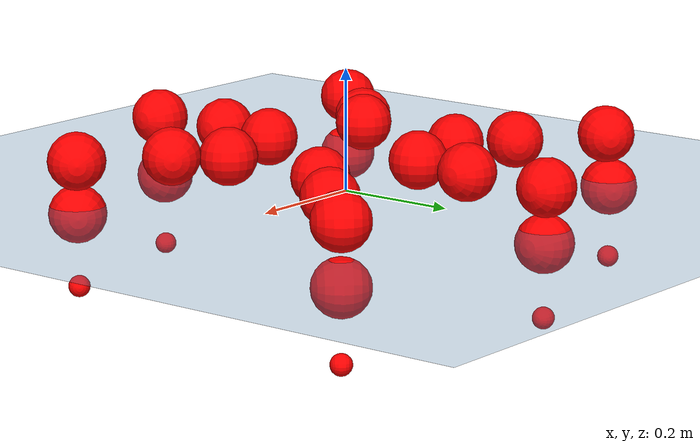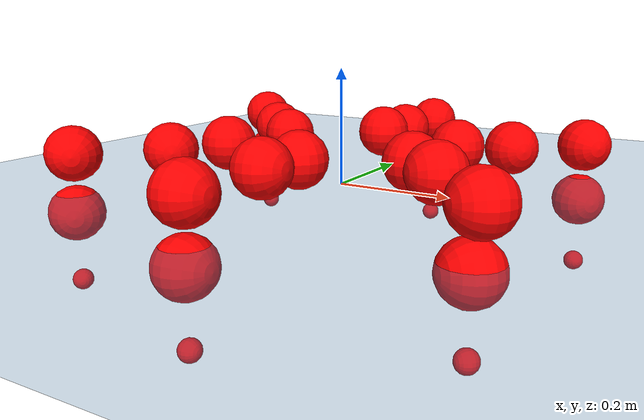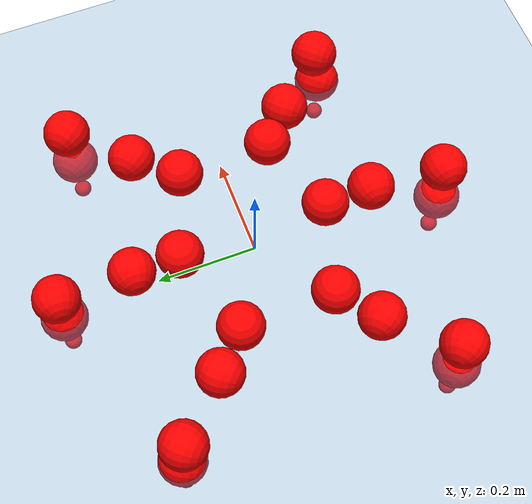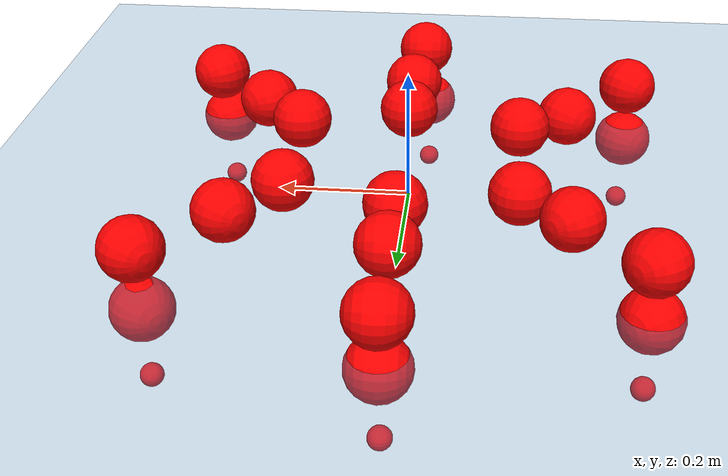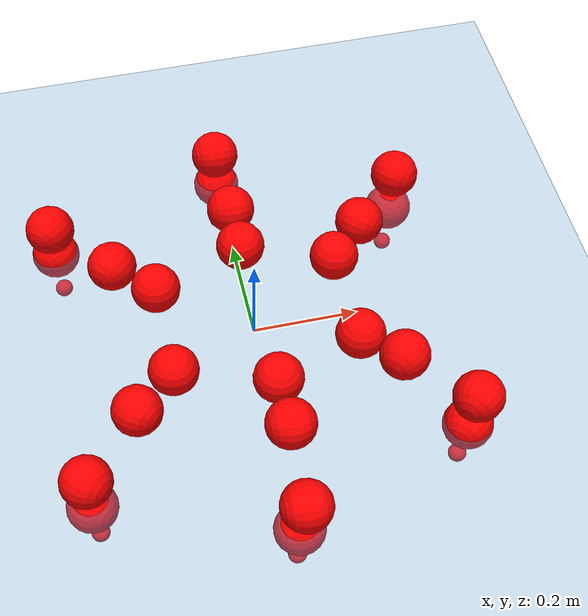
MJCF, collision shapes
<mujoco model="Golem">
  <compiler angle="radian" assetdir="assets" balanceinertia="true" inertiafromgeom="false"/>

  <option timestep="0.005" density="1.2" viscosity="2e-05"/>

  <size nkey="1"/>

  <visual>
    <quality shadowsize="8192"/>
    <map shadowclip="0.5"/>
  </visual>

  <default>
    <default class="/">
      <joint armature="0.01" damping="0.01" frictionloss="0.01"/>
      <geom contype="0" conaffinity="0" group="1" solref="-1000 -80"/>
      <site size="0.01 0.005 0.005" group="5"/>
      <general forcelimited="true" biastype="affine" gainprm="25" biasprm="0 -25 -0.5"/>
      <default class="visual">
        <geom type="mesh" group="2"/>
      </default>
      <default class="collision">
        <geom group="3"/>
      </default>
      <default class="foot">
        <geom size="0.01 0 0" condim="6" group="4" priority="1" solimp="0.015 1 0.01"/>
      </default>
      <default class="reward_collision_sphere">
        <geom group="5" rgba="1 0 0 1"/>
      </default>
    </default>
  </default>

  <asset>
    <texture type="skybox" colorspace="auto" name="//unnamed_texture_0" builtin="gradient" rgb1="0.95 0.95 0.95" rgb2="0.95 0.95 0.95" width="100" height="600"/>
    <texture type="2d" colorspace="auto" name="texplane" builtin="checker" rgb1="0.345 0.575 0.748" rgb2="0.345 0.575 0.748" markrgb="1 1 1" width="512" height="512"/>
    <material name="MatPlane" class="/" texture="texplane" texuniform="true" texrepeat="2 2" specular="0.9"/>
    <mesh name="body" class="/" file="body.stl" scale="0.001 0.001 0.001"/>
    <mesh name="coxa" class="/" file="coxa.stl" scale="0.001 0.001 0.001"/>
    <mesh name="femur" class="/" file="femur.stl" scale="0.001 0.001 0.001"/>
    <mesh name="tibia" class="/" file="tibia.stl" scale="0.001 0.001 0.001"/>
    <mesh name="tarsus" class="/" file="tarsus.stl" scale="0.001 0.001 0.001"/>
  </asset>

  <worldbody>
    <geom name="floor" class="/" size="100 100 0.125" type="plane" group="0" material="MatPlane"/>
    <light name="toplight_shadow" class="/" pos="0 0 5" dir="0.0990148 0.0990148 -0.990148" type="directional" ambient="0.04 0.04 0.04" diffuse="0.55 0.55 0.55" specular="0.12 0.12 0.12"/>
    <light name="toplight_fill" class="/" pos="0 0 5" dir="0.0990148 0.0990148 -0.990148" type="directional" castshadow="false" ambient="0.04 0.04 0.04" diffuse="0.3 0.3 0.3" specular="0.08 0.08 0.08"/>
    <body name="trunk" pos="0.00431152 -0.000307502 0.00249995" quat="1 0.000284693 0.00012744 -0.000627129">
      <inertial pos="-0.00133012 -0.00014942 0.00746995" quat="0.999207 -0.0292245 -0.0256938 -0.00843357" mass="5.86322" diaginertia="0.0162105 0.050874 0.0110513"/>
      <joint name="//unnamed_joint_0" type="free"/>
      <geom name="//unnamed_geom_1" class="/" pos="0 0 0.0652915" quat="1 0 0 0" type="mesh" rgba="0.9 0.9 0.9 1" mesh="body"/>
      <site name="imu" class="/" pos="0.132995 0.00235089 0.112576" size="0.011663"/>
      <camera name="track" class="/" pos="0 -2.76205 0" quat="0.707107 0.707107 0 0" mode="trackcom"/>
      <camera name="ego_camera" class="/" pos="0.1427 0 0.102018" quat="-0.5 -0.5 0.5 0.5"/>
      <body name="coxa_RR" pos="-0.195329 -0.120266 0.0702504" quat="0.381992 -0.000333481 0.00020385 -0.924165">
        <inertial pos="0.000868887 3.19264e-05 0.00163652" quat="0.99982 -0.00761695 -0.00272343 -0.0171816" mass="0.335954" diaginertia="0.0155431 0.0522144 0.0116747"/>
        <joint name="coxa_joint_RR" class="/" pos="0 0 0" axis="-0.0151874 -0.00498063 -0.999872" range="-3.10553 2.981" armature="0.0128398" damping="0.000191981" frictionloss="0.0134397"/>
        <geom name="//unnamed_geom_2" class="/" type="mesh" rgba="0.2 0.2 0.2 1" mesh="coxa"/>
        <geom name="//unnamed_geom_3" class="reward_collision_sphere" size="0.0466519" pos="-0.0329307 0 0"/>
        <body name="femur_RR" pos="0.0647924 -0.00978436 -0.00884351" quat="0.500304 -0.499443 0.499652 0.5006">
          <inertial pos="0.00104644 -0.00775724 -0.00922611" quat="0.999987 0.00413122 0.00172675 -0.00262889" mass="0.317239" diaginertia="0.0152925 0.0510754 0.0102214"/>
          <joint name="femur_joint_RR" class="/" pos="0 0 0" axis="-0.00177105 0.000902997 -0.999998" range="-3.11352 3.1512" armature="0.0115059" damping="0" frictionloss="0.00618523"/>
          <geom name="//unnamed_geom_4" class="/" type="mesh" rgba="0.9 0.9 0.9 1" mesh="femur"/>
          <geom name="//unnamed_geom_5" class="reward_collision_sphere" size="0.0466519"/>
          <body name="tibia_RR" pos="-0.0024097 -0.15722 0.00943107" quat="0.000837216 0.999999 0.000523008 0.000559707">
            <inertial pos="-0.00287556 0.00835992 -0.00275391" quat="0.999953 -0.00809671 0.00267613 -0.0046744" mass="0.311318" diaginertia="0.0163854 0.0513741 0.0111087"/>
            <joint name="tibia_joint_RR" class="/" pos="0 0 0" axis="-0.00358662 -0.0091769 0.999951" stiffness="0.00026226" range="-3.14254 3.15038" armature="0.0128731" damping="0" frictionloss="0.0138312"/>
            <geom name="//unnamed_geom_6" class="/" type="mesh" rgba="0.2 0.2 0.2 1" mesh="tibia"/>
            <geom name="//unnamed_geom_7" class="reward_collision_sphere" size="0.0466519"/>
            <body name="tarsus_RR" pos="0.100834 0.00220327 0.000627802" quat="0.999999 -1.57853e-05 0.000900026 -0.000541211">
              <inertial pos="0.0696458 0.00323697 -0.00110329" quat="0.488533 0.505979 0.506759 0.498514" mass="0.304911" diaginertia="0.0148087 0.0512843 0.0115203"/>
              <joint name="tarsus_joint_RR" class="/" pos="0 0 0" axis="-0.000419893 0.000789009 1" range="-2.95723 2.94666" armature="0.0129349" damping="0" frictionloss="0.0126987"/>
              <geom name="//unnamed_geom_8" class="/" type="mesh" rgba="0.9 0.9 0.9 1" mesh="tarsus"/>
              <geom name="foot_1" class="foot" size="0.0099375" pos="0.122941 0 0" quat="0 -0.707107 0 0.707107"/>
              <geom name="//unnamed_geom_10" class="reward_collision_sphere" size="0.0466519"/>
              <geom name="//unnamed_geom_11" class="reward_collision_sphere" size="0.0174945" pos="0.118002 0 0"/>
              <site name="foot_1" class="foot" pos="0.122941 0 0" quat="0 -0.707107 0 0.707107" size="0.011663"/>
            </body>
          </body>
        </body>
      </body>
      <body name="coxa_RM" pos="0.00782557 -0.183217 0.0681673" quat="0.706865 0.000421108 0.000775403 -0.707347">
        <inertial pos="0.00237599 0.00327283 0.00282832" quat="0.999051 -0.0272682 0.0322654 0.0106496" mass="0.298906" diaginertia="0.0147789 0.0499072 0.00999058"/>
        <joint name="coxa_joint_RM" class="/" pos="0 0 0" axis="-0.000140436 -0.000741028 -1" range="-3.15813 3.16628" armature="0.0120091" damping="0.0164001" frictionloss="0.0106268"/>
        <geom name="//unnamed_geom_12" class="/" type="mesh" rgba="0.2 0.2 0.2 1" mesh="coxa"/>
        <geom name="//unnamed_geom_13" class="reward_collision_sphere" size="0.0466519" pos="-0.0329307 0 0"/>
        <body name="femur_RM" pos="0.0628547 -8.99253e-05 0.00446568" quat="0.502089 -0.499833 0.49702 0.501044">
          <inertial pos="0.00807171 0.00294252 0.00944094" quat="0.999956 -0.00281666 0.00761374 0.00479297" mass="0.291864" diaginertia="0.0155991 0.0506268 0.0107922"/>
          <joint name="femur_joint_RM" class="/" pos="0 0 0" axis="0.00202353 -0.0127392 -0.999917" range="-3.13004 2.98385" armature="0.0111994" damping="0.0197328" frictionloss="0.0158417"/>
          <geom name="//unnamed_geom_14" class="/" type="mesh" rgba="0.9 0.9 0.9 1" mesh="femur"/>
          <geom name="//unnamed_geom_15" class="reward_collision_sphere" size="0.0466519"/>
          <body name="tibia_RM" pos="0.00516427 -0.152317 -0.00922942" quat="-0.000206261 0.999999 -0.000182911 -0.00109977">
            <inertial pos="0.00108598 0.000307724 -0.00170458" quat="0.999999 -0.00130005 -0.000646764 -0.000657969" mass="0.321032" diaginertia="0.0148619 0.0476235 0.0111453"/>
            <joint name="tibia_joint_RM" class="/" pos="0 0 0" axis="-0.00504147 0.0389235 0.999229" stiffness="0.0019199" range="-3.15924 3.27225" armature="0.010691" damping="0.0183856" frictionloss="0.0106241"/>
            <geom name="//unnamed_geom_16" class="/" type="mesh" rgba="0.2 0.2 0.2 1" mesh="tibia"/>
            <geom name="//unnamed_geom_17" class="reward_collision_sphere" size="0.0466519"/>
            <body name="tarsus_RM" pos="0.101452 -0.00320144 0.00774389" quat="1 -0.000271449 -0.000763095 0.00027672">
              <inertial pos="0.0653955 0.00194576 -0.00428703" quat="0.522029 0.490207 0.496501 0.49058" mass="0.312714" diaginertia="0.0151077 0.0499042 0.0122091"/>
              <joint name="tarsus_joint_RM" class="/" pos="0 0 0" axis="-0.00239135 -0.00333535 0.999992" stiffness="0.013457" range="-3.00254 3.30759" armature="0.0119944" damping="0" frictionloss="0.0113756"/>
              <geom name="//unnamed_geom_18" class="/" type="mesh" rgba="0.9 0.9 0.9 1" mesh="tarsus"/>
              <geom name="foot_2" class="foot" size="0.0114873" pos="0.122941 0 0" quat="0 -0.707107 0 0.707107"/>
              <geom name="//unnamed_geom_20" class="reward_collision_sphere" size="0.0466519"/>
              <geom name="//unnamed_geom_21" class="reward_collision_sphere" size="0.0174945" pos="0.118002 0 0"/>
              <site name="foot_2" class="foot" pos="0.122941 0 0" quat="0 -0.707107 0 0.707107" size="0.011663"/>
            </body>
          </body>
        </body>
      </body>
      <body name="coxa_RF" pos="0.197046 -0.116504 0.0719664" quat="0.923729 -0.00030212 0.00143796 -0.383045">
        <inertial pos="-0.000723947 0.0102129 0.000951872" quat="1 -6.24386e-05 3.96354e-06 -5.63583e-05" mass="0.303951" diaginertia="0.0153946 0.0489605 0.0107539"/>
        <joint name="coxa_joint_RF" class="/" pos="0 0 0" axis="-0.00248526 0.00124791 -0.999996" range="-3.14164 3.0467" armature="0.0105665" damping="0.031209" frictionloss="0.0110665"/>
        <geom name="//unnamed_geom_22" class="/" type="mesh" rgba="0.2 0.2 0.2 1" mesh="coxa"/>
        <geom name="//unnamed_geom_23" class="reward_collision_sphere" size="0.0466519" pos="-0.0329307 0 0"/>
        <body name="femur_RF" pos="0.0567715 0.00224755 0.00294555" quat="0.50071 -0.500388 0.499773 0.499128">
          <inertial pos="0.00185521 -0.000317061 -0.00570249" quat="0.999999 0.00103862 -0.000235377 -0.000305615" mass="0.325709" diaginertia="0.0157485 0.0540958 0.0104061"/>
          <joint name="femur_joint_RF" class="/" pos="0 0 0" axis="-0.00366067 0.0061429 -0.999974" stiffness="0.00307639" range="-3.29587 3.15395" armature="0.0119836" damping="0.0141025" frictionloss="0.0145937"/>
          <geom name="//unnamed_geom_24" class="/" type="mesh" rgba="0.9 0.9 0.9 1" mesh="femur"/>
          <geom name="//unnamed_geom_25" class="reward_collision_sphere" size="0.0466519"/>
          <body name="tibia_RF" pos="0.00462952 -0.14884 -0.00196104" quat="0.000525979 1 -0.00038757 0.000483281">
            <inertial pos="-0.00436318 0.00235373 0.000427899" quat="0.999047 -0.0334809 0.0280144 -0.0001017" mass="0.295603" diaginertia="0.0164356 0.0519373 0.0108807"/>
            <joint name="tibia_joint_RF" class="/" pos="0 0 0" axis="0.00158949 -0.027288 0.999626" stiffness="4.10501e-05" range="-3.1336 3.14477" armature="0.0123518" damping="0" frictionloss="0.0104825"/>
            <geom name="//unnamed_geom_26" class="/" type="mesh" rgba="0.2 0.2 0.2 1" mesh="tibia"/>
            <geom name="//unnamed_geom_27" class="reward_collision_sphere" size="0.0466519"/>
            <body name="tarsus_RF" pos="0.0873092 -0.000197588 0.010274" quat="0.999999 0.000556253 -6.29334e-05 -0.00136754">
              <inertial pos="0.0645848 0.00663377 -0.000286665" quat="0.501024 0.500363 0.499558 0.499053" mass="0.355052" diaginertia="0.0161963 0.0545921 0.0108325"/>
              <joint name="tarsus_joint_RF" class="/" pos="0 0 0" axis="-0.0243468 0.0183384 0.999535" range="-3.03426 3.14244" armature="0.0118353" damping="0" frictionloss="0.0116687"/>
              <geom name="//unnamed_geom_28" class="/" type="mesh" rgba="0.9 0.9 0.9 1" mesh="tarsus"/>
              <geom name="foot_3" class="foot" size="0.0121437" pos="0.122941 0 0" quat="0 -0.707107 0 0.707107"/>
              <geom name="//unnamed_geom_30" class="reward_collision_sphere" size="0.0466519"/>
              <geom name="//unnamed_geom_31" class="reward_collision_sphere" size="0.0174945" pos="0.118002 0 0"/>
              <site name="foot_3" class="foot" pos="0.122941 0 0" quat="0 -0.707107 0 0.707107" size="0.011663"/>
            </body>
          </body>
        </body>
      </body>
      <body name="coxa_LR" pos="-0.197244 0.115338 0.0608399" quat="0.381848 0.000601575 -9.34899e-06 0.924225">
        <inertial pos="-0.000827065 -0.000688392 -0.00650653" quat="0.999951 0.00460583 0.00834754 -0.00248598" mass="0.31418" diaginertia="0.0158292 0.0486101 0.0121003"/>
        <joint name="coxa_joint_LR" class="/" pos="0 0 0" axis="-0.00354166 0.0104604 -0.999939" stiffness="0.0249261" range="-3.0973 3.12994" armature="0.0124213" damping="0.0409578" frictionloss="0.0164263"/>
        <geom name="//unnamed_geom_32" class="/" type="mesh" rgba="0.2 0.2 0.2 1" mesh="coxa"/>
        <geom name="//unnamed_geom_33" class="reward_collision_sphere" size="0.0466519" pos="-0.0329307 0 0"/>
        <body name="femur_LR" pos="0.0660533 0.00446189 0.00153353" quat="0.500006 -0.499616 0.500261 0.500117">
          <inertial pos="-0.00724038 0.0014915 -0.00488976" quat="0.999994 -0.00334994 0.000931674 -0.000104948" mass="0.349725" diaginertia="0.0152488 0.0493001 0.0105975"/>
          <joint name="femur_joint_LR" class="/" pos="0 0 0" axis="-0.0147764 0.0103952 0.999837" range="-2.95571 3.29388" armature="0.0163534" damping="0.0245274" frictionloss="0.0125616"/>
          <geom name="//unnamed_geom_34" class="/" type="mesh" rgba="0.9 0.9 0.9 1" mesh="femur"/>
          <geom name="//unnamed_geom_35" class="reward_collision_sphere" size="0.0466519"/>
          <body name="tibia_LR" pos="-0.00604936 -0.150234 -0.00140309" quat="0.000367186 0.999999 -0.000290304 -0.00119761">
            <inertial pos="-0.00268061 0.00524178 0.000192448" quat="0.999999 0.000710037 -8.46197e-05 -0.00098862" mass="0.288364" diaginertia="0.0157087 0.0451876 0.0113091"/>
            <joint name="tibia_joint_LR" class="/" pos="0 0 0" axis="0.0306264 -0.015043 -0.999418" stiffness="0.0143067" range="-3.10227 3.26705" armature="0.0121431" damping="0" frictionloss="0.0123113"/>
            <geom name="//unnamed_geom_36" class="/" type="mesh" rgba="0.2 0.2 0.2 1" mesh="tibia"/>
            <geom name="//unnamed_geom_37" class="reward_collision_sphere" size="0.0466519"/>
            <body name="tarsus_LR" pos="0.0873147 0.00519795 0.00392567" quat="0.999992 -0.00150736 0.00189862 0.00310651">
              <inertial pos="0.0721523 0.00595445 -0.000192811" quat="0.498566 0.498625 0.500684 0.502116" mass="0.317387" diaginertia="0.0154323 0.0535273 0.0103759"/>
              <joint name="tarsus_joint_LR" class="/" pos="0 0 0" axis="-0.000133329 -0.000247025 -1" stiffness="0.0187588" range="-3.17528 3.18119" armature="0.0108531" damping="0.0234647" frictionloss="0.00750509"/>
              <geom name="//unnamed_geom_38" class="/" type="mesh" rgba="0.9 0.9 0.9 1" mesh="tarsus"/>
              <geom name="foot_4" class="foot" size="0.0125921" pos="0.122941 0 0" quat="0.707107 0 -0.707107 0"/>
              <geom name="//unnamed_geom_40" class="reward_collision_sphere" size="0.0466519"/>
              <geom name="//unnamed_geom_41" class="reward_collision_sphere" size="0.0174945" pos="0.118002 0 0"/>
              <site name="foot_4" class="foot" pos="0.122941 0 0" quat="0.707107 0 -0.707107 0" size="0.011663"/>
            </body>
          </body>
        </body>
      </body>
      <body name="coxa_LM" pos="0.000782339 0.183371 0.0700174" quat="0.707302 -0.000702965 0.000600167 0.706911">
        <inertial pos="-0.006855 0.000659039 -0.000311047" quat="0.999994 0.00338162 -0.00043255 -0.000309816" mass="0.342366" diaginertia="0.0151844 0.05427 0.0119219"/>
        <joint name="coxa_joint_LM" class="/" pos="0 0 0" axis="-0.00525732 -0.015426 -0.999867" range="-3.10286 3.12391" armature="0.0125366" damping="0.018533" frictionloss="0.0136828"/>
        <geom name="//unnamed_geom_42" class="/" type="mesh" rgba="0.2 0.2 0.2 1" mesh="coxa"/>
        <geom name="//unnamed_geom_43" class="reward_collision_sphere" size="0.0466519" pos="-0.0329307 0 0"/>
        <body name="femur_LM" pos="0.0632441 -0.00043482 -0.00557617" quat="0.499999 -0.499998 0.500003 0.5">
          <inertial pos="-0.00386001 -0.000435845 0.00269668" quat="0.999999 0.00138112 -0.000155734 -9.9399e-05" mass="0.302276" diaginertia="0.0169092 0.0462664 0.00957255"/>
          <joint name="femur_joint_LM" class="/" pos="0 0 0" axis="0.037383 -0.0188653 0.999123" stiffness="0.0157879" range="-3.2996 3.17732" armature="0.0109289" damping="0.0559375" frictionloss="0.0115236"/>
          <geom name="//unnamed_geom_44" class="/" type="mesh" rgba="0.9 0.9 0.9 1" mesh="femur"/>
          <geom name="//unnamed_geom_45" class="reward_collision_sphere" size="0.0466519"/>
          <body name="tibia_LM" pos="0.0029339 -0.14879 0.00298457" quat="-0.000168337 1 1.6096e-05 9.38668e-05">
            <inertial pos="0.008042 0.00011251 -0.000630454" quat="0.999999 -0.00106776 0.00110085 8.11539e-05" mass="0.329957" diaginertia="0.0163349 0.0527695 0.0108914"/>
            <joint name="tibia_joint_LM" class="/" pos="0 0 0" axis="-0.000879428 -0.00147663 -0.999999" range="-3.13616 3.1769" armature="0.0143096" damping="0" frictionloss="0.0175014"/>
            <geom name="//unnamed_geom_46" class="/" type="mesh" rgba="0.2 0.2 0.2 1" mesh="tibia"/>
            <geom name="//unnamed_geom_47" class="reward_collision_sphere" size="0.0466519"/>
            <body name="tarsus_LM" pos="0.0884095 -0.00207479 0.000351982" quat="1 -7.17869e-05 1.98734e-05 9.49853e-05">
              <inertial pos="0.0715542 0.000804171 0.00375776" quat="0.517976 0.476103 0.494501 0.510388" mass="0.317314" diaginertia="0.0166619 0.0502074 0.0114985"/>
              <joint name="tarsus_joint_LM" class="/" pos="0 0 0" axis="-0.00754124 -0.00284154 -0.999968" range="-3.24478 3.13947" armature="0.0114401" damping="0" frictionloss="0.0128159"/>
              <geom name="//unnamed_geom_48" class="/" type="mesh" rgba="0.9 0.9 0.9 1" mesh="tarsus"/>
              <geom name="foot_5" class="foot" size="0.00725687" pos="0.122941 0 0" quat="0.707107 0 -0.707107 0"/>
              <geom name="//unnamed_geom_50" class="reward_collision_sphere" size="0.0466519"/>
              <geom name="//unnamed_geom_51" class="reward_collision_sphere" size="0.0174945" pos="0.118002 0 0"/>
              <site name="foot_5" class="foot" pos="0.122941 0 0" quat="0.707107 0 -0.707107 0" size="0.011663"/>
            </body>
          </body>
        </body>
      </body>
      <body name="coxa_LF" pos="0.195207 0.115586 0.0655289" quat="0.923754 0.000406529 -0.000208201 0.382987">
        <inertial pos="0.000355366 0.00909047 0.00181043" quat="0.999368 0.0256361 -0.0114377 -0.0218288" mass="0.279637" diaginertia="0.0136934 0.0437216 0.00958199"/>
        <joint name="coxa_joint_LF" class="/" pos="0 0 0" axis="-0.0163755 0.0059333 -0.999848" stiffness="0.0247502" range="-3.23859 3.14624" armature="0.0102671" damping="0" frictionloss="0.0152603"/>
        <geom name="//unnamed_geom_52" class="/" type="mesh" rgba="0.2 0.2 0.2 1" mesh="coxa"/>
        <geom name="//unnamed_geom_53" class="reward_collision_sphere" size="0.0466519" pos="-0.0329307 0 0"/>
        <body name="femur_LF" pos="0.0725431 0.00435374 -0.0080569" quat="0.499831 -0.500071 0.500015 0.500083">
          <inertial pos="0.00131353 -0.00396768 0.00690636" quat="0.999995 0.000974444 -0.00141794 0.00253999" mass="0.303224" diaginertia="0.0151719 0.0481415 0.0113043"/>
          <joint name="femur_joint_LF" class="/" pos="0 0 0" axis="-0.00147276 0.000257443 0.999999" stiffness="0.0497881" range="-3.15649 3.14911" armature="0.00935888" damping="0.0234504" frictionloss="0.0122348"/>
          <geom name="//unnamed_geom_54" class="/" type="mesh" rgba="0.9 0.9 0.9 1" mesh="femur"/>
          <geom name="//unnamed_geom_55" class="reward_collision_sphere" size="0.0466519"/>
          <body name="tibia_LF" pos="0.00223761 -0.145651 0.00124662" quat="-0.000422913 1 -0.000369127 -0.000653805">
            <inertial pos="-0.00793981 -0.00797602 -0.0095529" quat="0.999997 3.45751e-05 -0.00180657 0.00147166" mass="0.323742" diaginertia="0.0167144 0.0489393 0.00997602"/>
            <joint name="tibia_joint_LF" class="/" pos="0 0 0" axis="0.00643395 0.00302353 -0.999975" range="-3.22676 3.2979" armature="0.0111064" damping="0.0170437" frictionloss="0.0139029"/>
            <geom name="//unnamed_geom_56" class="/" type="mesh" rgba="0.2 0.2 0.2 1" mesh="tibia"/>
            <geom name="//unnamed_geom_57" class="reward_collision_sphere" size="0.0466519"/>
            <body name="tarsus_LF" pos="0.101034 -0.00394068 -0.000645895" quat="1 -0.000224087 -7.36046e-05 -0.000204194">
              <inertial pos="0.0700934 0.000186025 -0.00790006" quat="0.521251 0.480885 0.506038 0.49089" mass="0.323146" diaginertia="0.0148458 0.0516117 0.00996695"/>
              <joint name="tarsus_joint_LF" class="/" pos="0 0 0" axis="-0.000149862 0.000137588 -1" range="-3.01215 3.30521" armature="0.00982357" damping="0.0151464" frictionloss="0.00992535"/>
              <geom name="//unnamed_geom_58" class="/" type="mesh" rgba="0.9 0.9 0.9 1" mesh="tarsus"/>
              <geom name="foot_6" class="foot" size="0.00990261" pos="0.122941 0 0" quat="0.707107 0 -0.707107 0"/>
              <geom name="//unnamed_geom_60" class="reward_collision_sphere" size="0.0466519"/>
              <geom name="//unnamed_geom_61" class="reward_collision_sphere" size="0.0174945" pos="0.118002 0 0"/>
              <site name="foot_6" class="foot" pos="0.122941 0 0" quat="0.707107 0 -0.707107 0" size="0.011663"/>
            </body>
          </body>
        </body>
      </body>
    </body>
  </worldbody>

  <contact>
    <pair class="/" geom1="floor" geom2="foot_1" name="//unnamed_contact_0"/>
    <pair class="/" geom1="floor" geom2="foot_2" name="//unnamed_contact_1"/>
    <pair class="/" geom1="floor" geom2="foot_3" name="//unnamed_contact_2"/>
    <pair class="/" geom1="floor" geom2="foot_4" name="//unnamed_contact_3"/>
    <pair class="/" geom1="floor" geom2="foot_5" name="//unnamed_contact_4"/>
    <pair class="/" geom1="floor" geom2="foot_6" name="//unnamed_contact_5"/>
  </contact>

  <actuator>
    <general name="coxa_joint_RR" class="/" joint="coxa_joint_RR" forcerange="-8.26496 8.26496" gainprm="22.2296" biasprm="0 -22.2296 -0.56971"/>
    <general name="femur_joint_RR" class="/" joint="femur_joint_RR" forcerange="-8.93549 8.93549" gainprm="22.2296" biasprm="0 -22.2296 -0.56971"/>
    <general name="tibia_joint_RR" class="/" joint="tibia_joint_RR" forcerange="-8.35468 8.35468" gainprm="22.2296" biasprm="0 -22.2296 -0.56971"/>
    <general name="tarsus_joint_RR" class="/" joint="tarsus_joint_RR" forcerange="-9.15748 9.15748" gainprm="22.2296" biasprm="0 -22.2296 -0.56971"/>
    <general name="coxa_joint_RM" class="/" joint="coxa_joint_RM" forcerange="-7.86192 7.86192" gainprm="22.2296" biasprm="0 -22.2296 -0.56971"/>
    <general name="femur_joint_RM" class="/" joint="femur_joint_RM" forcerange="-8.94242 8.94242" gainprm="22.2296" biasprm="0 -22.2296 -0.56971"/>
    <general name="tibia_joint_RM" class="/" joint="tibia_joint_RM" forcerange="-8.67941 8.67941" gainprm="22.2296" biasprm="0 -22.2296 -0.56971"/>
    <general name="tarsus_joint_RM" class="/" joint="tarsus_joint_RM" forcerange="-10.1822 10.1822" gainprm="22.2296" biasprm="0 -22.2296 -0.56971"/>
    <general name="coxa_joint_RF" class="/" joint="coxa_joint_RF" forcerange="-7.87194 7.87194" gainprm="22.2296" biasprm="0 -22.2296 -0.56971"/>
    <general name="femur_joint_RF" class="/" joint="femur_joint_RF" forcerange="-8.47177 8.47177" gainprm="22.2296" biasprm="0 -22.2296 -0.56971"/>
    <general name="tibia_joint_RF" class="/" joint="tibia_joint_RF" forcerange="-8.31618 8.31618" gainprm="22.2296" biasprm="0 -22.2296 -0.56971"/>
    <general name="tarsus_joint_RF" class="/" joint="tarsus_joint_RF" forcerange="-8.35073 8.35073" gainprm="22.2296" biasprm="0 -22.2296 -0.56971"/>
    <general name="coxa_joint_LR" class="/" joint="coxa_joint_LR" forcerange="-8.71082 8.71082" gainprm="22.2296" biasprm="0 -22.2296 -0.56971"/>
    <general name="femur_joint_LR" class="/" joint="femur_joint_LR" forcerange="-10.5978 10.5978" gainprm="22.2296" biasprm="0 -22.2296 -0.56971"/>
    <general name="tibia_joint_LR" class="/" joint="tibia_joint_LR" forcerange="-8.99677 8.99677" gainprm="22.2296" biasprm="0 -22.2296 -0.56971"/>
    <general name="tarsus_joint_LR" class="/" joint="tarsus_joint_LR" forcerange="-8.35632 8.35632" gainprm="22.2296" biasprm="0 -22.2296 -0.56971"/>
    <general name="coxa_joint_LM" class="/" joint="coxa_joint_LM" forcerange="-8.03176 8.03176" gainprm="22.2296" biasprm="0 -22.2296 -0.56971"/>
    <general name="femur_joint_LM" class="/" joint="femur_joint_LM" forcerange="-9.19169 9.19169" gainprm="22.2296" biasprm="0 -22.2296 -0.56971"/>
    <general name="tibia_joint_LM" class="/" joint="tibia_joint_LM" forcerange="-8.41366 8.41366" gainprm="22.2296" biasprm="0 -22.2296 -0.56971"/>
    <general name="tarsus_joint_LM" class="/" joint="tarsus_joint_LM" forcerange="-7.49433 7.49433" gainprm="22.2296" biasprm="0 -22.2296 -0.56971"/>
    <general name="coxa_joint_LF" class="/" joint="coxa_joint_LF" forcerange="-8.56146 8.56146" gainprm="22.2296" biasprm="0 -22.2296 -0.56971"/>
    <general name="femur_joint_LF" class="/" joint="femur_joint_LF" forcerange="-6.96078 6.96078" gainprm="22.2296" biasprm="0 -22.2296 -0.56971"/>
    <general name="tibia_joint_LF" class="/" joint="tibia_joint_LF" forcerange="-8.64545 8.64545" gainprm="22.2296" biasprm="0 -22.2296 -0.56971"/>
    <general name="tarsus_joint_LF" class="/" joint="tarsus_joint_LF" forcerange="-11.6668 11.6668" gainprm="22.2296" biasprm="0 -22.2296 -0.56971"/>
  </actuator>

  <sensor>
    <gyro site="imu" name="imu_angular_velocity"/>
    <velocimeter site="imu" name="imu_linear_velocity"/>
    <framelinvel objtype="site" objname="foot_1" name="foot_1_global_linear_velocity"/>
    <framelinvel objtype="site" objname="foot_2" name="foot_2_global_linear_velocity"/>
    <framelinvel objtype="site" objname="foot_3" name="foot_3_global_linear_velocity"/>
    <framelinvel objtype="site" objname="foot_4" name="foot_4_global_linear_velocity"/>
    <framelinvel objtype="site" objname="foot_5" name="foot_5_global_linear_velocity"/>
    <framelinvel objtype="site" objname="foot_6" name="foot_6_global_linear_velocity"/>
  </sensor>

  <keyframe>
    <key name="home" qpos="0 0 0.1457 1 0 0 0 0 0 0 0 0 0 0 0 0 0 0 0 0 0 0 0 0 0 0 0 0 0 0 0"/>
  </keyframe>
</mujoco>
